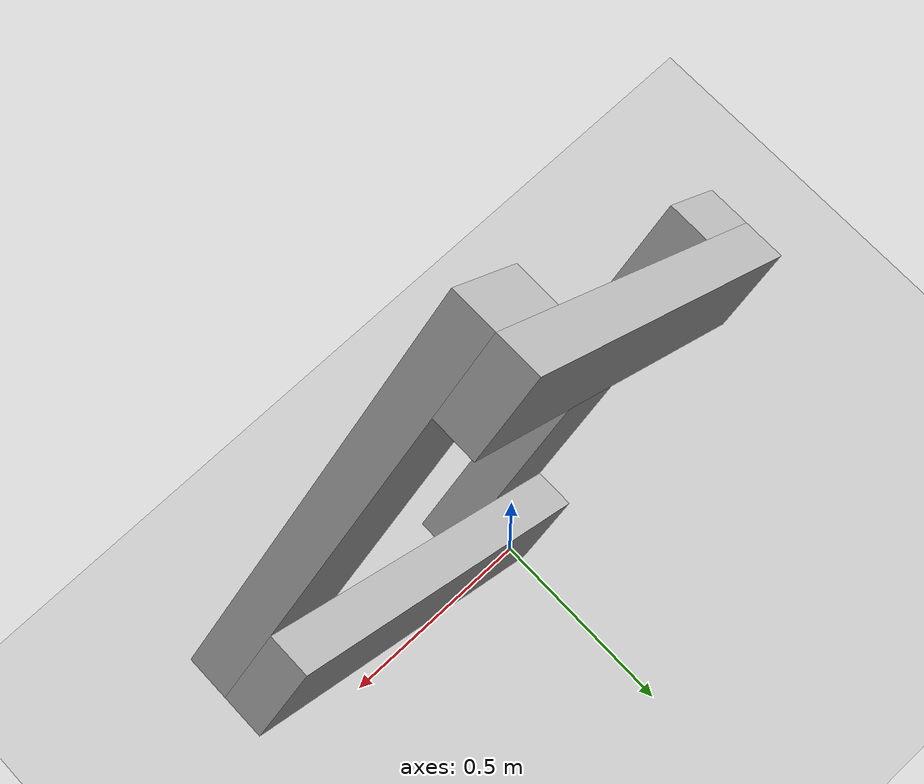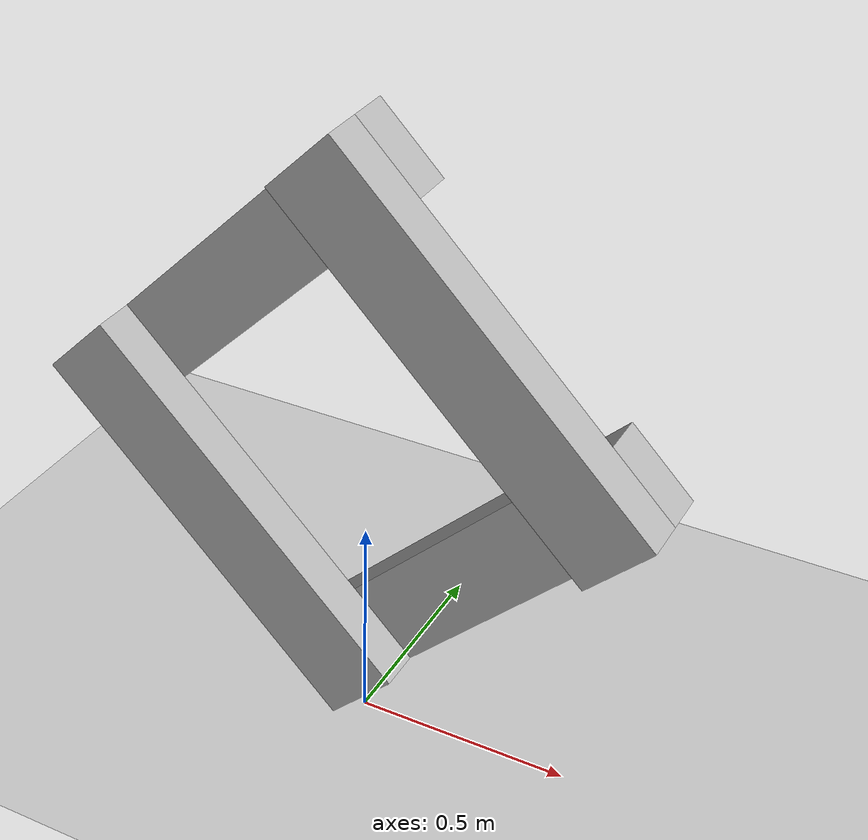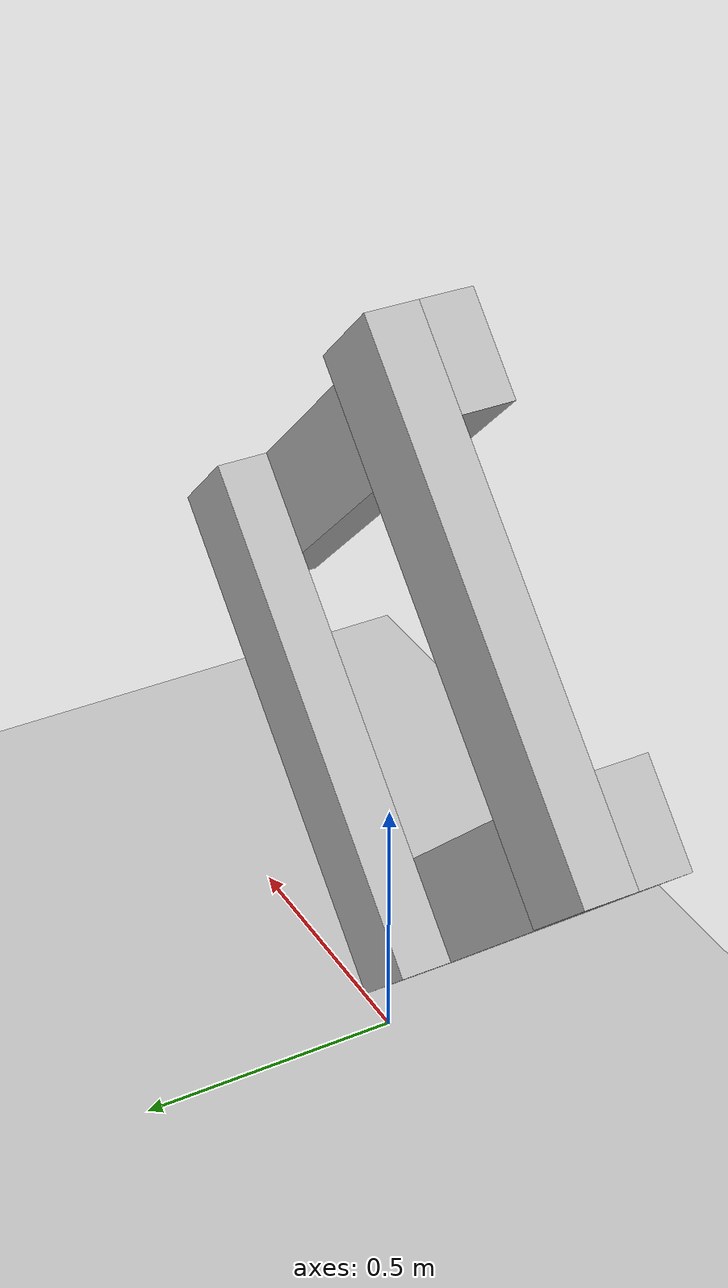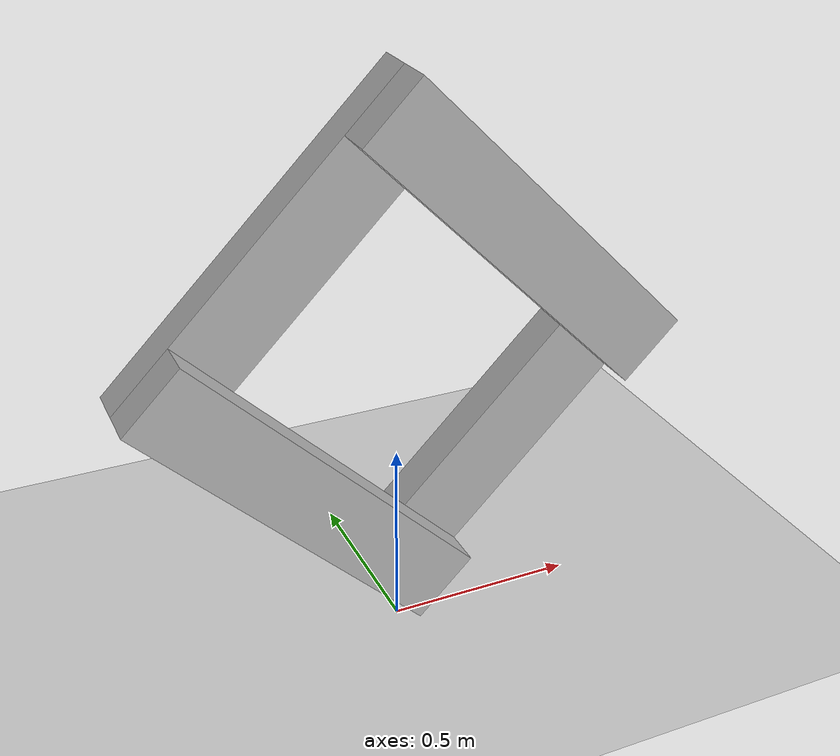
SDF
<?xml version="1.0" ?>
<sdf version='1.6'>
  <world name="default">
    <gravity>0 0 -9.8</gravity>
    <physics type="dart">
      <dart>
        <solver>
          <solver_type>pgs</solver_type>
        </solver>
      </dart>
    </physics>

    <model name="ground_plane">
      <static>true</static>
      <link name="link">
        <collision name="collision">
          <geometry>
            <plane>
              <normal>0 0 1</normal>
              <size>100 100</size>
            </plane>
          </geometry>
        </collision>
        <visual name="visual">
          <geometry>
            <plane>
              <normal>0 0 1</normal>
              <size>100 100</size>
            </plane>
          </geometry>
          <material>
            <ambient>0.8 0.8 0.8 1</ambient>
            <diffuse>0.8 0.8 0.8 1</diffuse>
            <emissive>0.8 0.8 0.8 1</emissive>
          </material>
        </visual>
      </link>
    </model>

    <model name='free_loop'>
      <self_collide>1</self_collide>
      <pose>0 0.0 0.8 1.5708 0.7854 0</pose>

      <link name='link_0'>
        <pose>-0.4 0 0 0 0 0</pose>
        <visual name='vis_body'>
          <geometry>
            <box>
              <size>0.2 1 0.1</size>
            </box>
          </geometry>
        </visual>
        <collision name='col_body'>
          <geometry>
            <box>
              <size>0.2 1 0.1</size>
            </box>
          </geometry>
        </collision>
      </link>

      <link name='link_1'>
        <pose>0 0.4 0.1 0 0 -1.5708</pose>
        <visual name='vis_body'>
          <geometry>
            <box>
              <size>0.2 1 0.1</size>
            </box>
          </geometry>
        </visual>
        <collision name='col_body'>
          <geometry>
            <box>
              <size>0.2 1 0.1</size>
            </box>
          </geometry>
        </collision>
      </link>

      <link name='link_2'>
        <pose>0.4 0 0 0 0 -3.14159</pose>
        <visual name='vis_body'>
          <geometry>
            <box>
              <size>0.2 1 0.1</size>
            </box>
          </geometry>
        </visual>
        <collision name='col_body'>
          <geometry>
            <box>
              <size>0.2 1 0.1</size>
            </box>
          </geometry>
        </collision>
      </link>

      <link name='link_3'>
        <pose>0 -0.4 0.1 0 0 1.5708</pose>
        <visual name='vis_body'>
          <geometry>
            <box>
              <size>0.2 1 0.1</size>
            </box>
          </geometry>
        </visual>
        <collision name='col_body'>
          <geometry>
            <box>
              <size>0.2 1 0.1</size>
            </box>
          </geometry>
        </collision>
      </link>

      <joint name='joint_0_1' type='revolute'>
        <parent>link_0</parent>
        <child>link_1</child>
        <pose>0 -0.4 0 0 0 0</pose>
        <axis>
          <xyz>0 0 1</xyz>
          <limit>
            <upper>1.4</upper>
            <lower>-1.4</lower>
          </limit>
        </axis>
      </joint>

      <joint name='joint_1_2' type='revolute'>
        <parent>link_1</parent>
        <child>link_2</child>
        <pose>0 -0.4 0 0 0 0</pose>
        <axis>
          <xyz>0 0 1</xyz>
        </axis>
      </joint>

      <joint name='joint_2_3' type='revolute'>
        <parent>link_2</parent>
        <child>link_3</child>
        <pose>0 -0.4 0 0 0 0</pose>
        <axis>
          <xyz>0 0 1</xyz>
        </axis>
      </joint>

      <joint name='joint_3_0' type='revolute'>
        <parent>link_3</parent>
        <child>link_0</child>
        <pose>0 -0.4 0 0 0 0</pose>
        <axis>
          <xyz>0 0 1</xyz>
        </axis>
      </joint>
    </model>

  </world>
</sdf>
